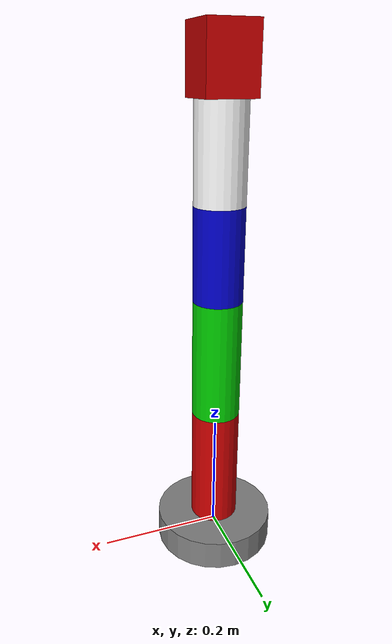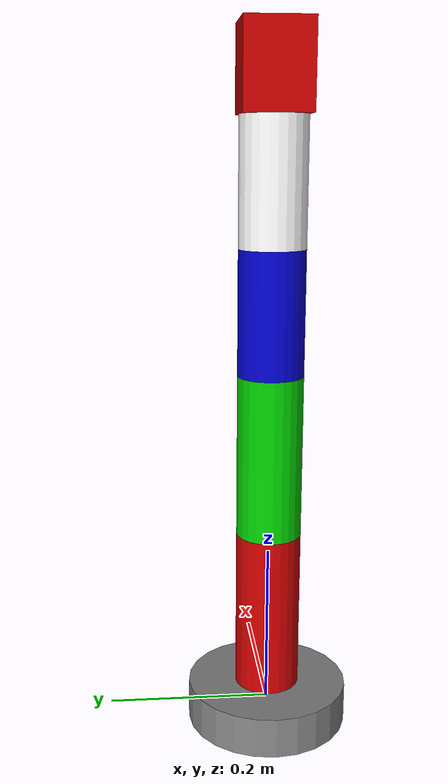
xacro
<?xml version="1.0"?>
<robot name="five_dof_arm" xmlns:xacro="http://www.ros.org/wiki/xacro">

  <!-- Materials and colors -->
  <material name="blue">
    <color rgba="0.0 0.0 0.8 1.0"/>
  </material>
  <material name="red">
    <color rgba="0.8 0.0 0.0 1.0"/>
  </material>
  <material name="green">
    <color rgba="0.0 0.8 0.0 1.0"/>
  </material>
  <material name="grey">
    <color rgba="0.5 0.5 0.5 1.0"/>
  </material>
  <material name="white">
    <color rgba="1.0 1.0 1.0 1.0"/>
  </material>

  <!-- Constants -->
  <xacro:property name="PI" value="3.14159265359" />

  <!-- Link dimensions -->
  <xacro:property name="base_radius" value="0.1" />
  <xacro:property name="base_height" value="0.05" />
  <xacro:property name="link_radius" value="0.04" />
  <xacro:property name="link1_length" value="0.2" />
  <xacro:property name="link2_length" value="0.2" />
  <xacro:property name="link3_length" value="0.15" />
  <xacro:property name="link4_length" value="0.15" />
  <xacro:property name="gripper_length" value="0.1" />

  <!-- Mass properties -->
  <xacro:property name="base_mass" value="1.0" />
  <xacro:property name="link1_mass" value="0.8" />
  <xacro:property name="link2_mass" value="0.8" />
  <xacro:property name="link3_mass" value="0.6" />
  <xacro:property name="link4_mass" value="0.6" />
  <xacro:property name="gripper_mass" value="0.3" />

  <!-- Inertia macro for cylindrical links -->
  <xacro:macro name="cylinder_inertia" params="mass radius length">
    <inertial>
      <mass value="${mass}" />
      <origin xyz="0 0 ${length/2}" rpy="0 0 0" />
      <inertia
        ixx="${mass * (3 * radius * radius + length * length) / 12}"
        ixy="0.0"
        ixz="0.0"
        iyy="${mass * (3 * radius * radius + length * length) / 12}"
        iyz="0.0"
        izz="${mass * radius * radius / 2}" />
    </inertial>
  </xacro:macro>

  <!-- Base link -->
  <link name="base_link">
    <visual>
      <geometry>
        <cylinder radius="${base_radius}" length="${base_height}" />
      </geometry>
      <material name="grey" />
    </visual>
    <collision>
      <geometry>
        <cylinder radius="${base_radius}" length="${base_height}" />
      </geometry>
    </collision>
    <inertial>
      <mass value="${base_mass}" />
      <origin xyz="0 0 0" rpy="0 0 0" />
      <inertia
        ixx="${base_mass * (3 * base_radius * base_radius + base_height * base_height) / 12}"
        ixy="0.0"
        ixz="0.0"
        iyy="${base_mass * (3 * base_radius * base_radius + base_height * base_height) / 12}"
        iyz="0.0"
        izz="${base_mass * base_radius * base_radius / 2}" />
    </inertial>
  </link>

  <!-- Joint 1: Base to Link 1 (Rotation around Z) -->
  <joint name="joint1" type="revolute">
    <parent link="base_link" />
    <child link="link1" />
    <origin xyz="0 0 ${base_height/2}" rpy="0 0 0" />
    <axis xyz="0 0 1" />
    <limit lower="${-PI}" upper="${PI}" effort="100" velocity="1.0" />
  </joint>

  <!-- Link 1 -->
  <link name="link1">
    <visual>
      <geometry>
        <cylinder radius="${link_radius}" length="${link1_length}" />
      </geometry>
      <origin xyz="0 0 ${link1_length/2}" rpy="0 0 0" />
      <material name="red" />
    </visual>
    <collision>
      <geometry>
        <cylinder radius="${link_radius}" length="${link1_length}" />
      </geometry>
      <origin xyz="0 0 ${link1_length/2}" rpy="0 0 0" />
    </collision>
    <xacro:cylinder_inertia mass="${link1_mass}" radius="${link_radius}" length="${link1_length}" />
  </link>

  <!-- Joint 2: Link 1 to Link 2 (Rotation around Y) -->
  <joint name="joint2" type="revolute">
    <parent link="link1" />
    <child link="link2" />
    <origin xyz="0 0 ${link1_length}" rpy="0 0 0" />
    <axis xyz="0 1 0" />
    <limit lower="${-PI/2}" upper="${PI/2}" effort="100" velocity="1.0" />
  </joint>

  <!-- Link 2 -->
  <link name="link2">
    <visual>
      <geometry>
        <cylinder radius="${link_radius}" length="${link2_length}" />
      </geometry>
      <origin xyz="0 0 ${link2_length/2}" rpy="0 0 0" />
      <material name="green" />
    </visual>
    <collision>
      <geometry>
        <cylinder radius="${link_radius}" length="${link2_length}" />
      </geometry>
      <origin xyz="0 0 ${link2_length/2}" rpy="0 0 0" />
    </collision>
    <xacro:cylinder_inertia mass="${link2_mass}" radius="${link_radius}" length="${link2_length}" />
  </link>

  <!-- Joint 3: Link 2 to Link 3 (Rotation around Y) -->
  <joint name="joint3" type="revolute">
    <parent link="link2" />
    <child link="link3" />
    <origin xyz="0 0 ${link2_length}" rpy="0 0 0" />
    <axis xyz="0 1 0" />
    <limit lower="${-PI/2}" upper="${PI/2}" effort="100" velocity="1.0" />
  </joint>

  <!-- Link 3 -->
  <link name="link3">
    <visual>
      <geometry>
        <cylinder radius="${link_radius}" length="${link3_length}" />
      </geometry>
      <origin xyz="0 0 ${link3_length/2}" rpy="0 0 0" />
      <material name="blue" />
    </visual>
    <collision>
      <geometry>
        <cylinder radius="${link_radius}" length="${link3_length}" />
      </geometry>
      <origin xyz="0 0 ${link3_length/2}" rpy="0 0 0" />
    </collision>
    <xacro:cylinder_inertia mass="${link3_mass}" radius="${link_radius}" length="${link3_length}" />
  </link>

  <!-- Joint 4: Link 3 to Link 4 (Rotation around Y) -->
  <joint name="joint4" type="revolute">
    <parent link="link3" />
    <child link="link4" />
    <origin xyz="0 0 ${link3_length}" rpy="0 0 0" />
    <axis xyz="0 1 0" />
    <limit lower="${-PI/2}" upper="${PI/2}" effort="100" velocity="1.0" />
  </joint>

  <!-- Link 4 -->
  <link name="link4">
    <visual>
      <geometry>
        <cylinder radius="${link_radius}" length="${link4_length}" />
      </geometry>
      <origin xyz="0 0 ${link4_length/2}" rpy="0 0 0" />
      <material name="white" />
    </visual>
    <collision>
      <geometry>
        <cylinder radius="${link_radius}" length="${link4_length}" />
      </geometry>
      <origin xyz="0 0 ${link4_length/2}" rpy="0 0 0" />
    </collision>
    <xacro:cylinder_inertia mass="${link4_mass}" radius="${link_radius}" length="${link4_length}" />
  </link>

  <!-- Joint 5: Link 4 to Gripper (Rotation around Z) -->
  <joint name="joint5" type="revolute">
    <parent link="link4" />
    <child link="gripper" />
    <origin xyz="0 0 ${link4_length}" rpy="0 0 0" />
    <axis xyz="0 0 1" />
    <limit lower="${-PI}" upper="${PI}" effort="100" velocity="1.0" />
  </joint>

  <!-- Gripper -->
  <link name="gripper">
    <visual>
      <geometry>
        <box size="${link_radius*2} ${link_radius*2} ${gripper_length}" />
      </geometry>
      <origin xyz="0 0 ${gripper_length/2}" rpy="0 0 0" />
      <material name="red" />
    </visual>
    <collision>
      <geometry>
        <box size="${link_radius*2} ${link_radius*2} ${gripper_length}" />
      </geometry>
      <origin xyz="0 0 ${gripper_length/2}" rpy="0 0 0" />
    </collision>
    <inertial>
      <mass value="${gripper_mass}" />
      <origin xyz="0 0 ${gripper_length/2}" rpy="0 0 0" />
      <inertia
        ixx="${gripper_mass * (link_radius*link_radius*4 + gripper_length*gripper_length) / 12}"
        ixy="0.0"
        ixz="0.0"
        iyy="${gripper_mass * (link_radius*link_radius*4 + gripper_length*gripper_length) / 12}"
        iyz="0.0"
        izz="${gripper_mass * link_radius*link_radius*2 / 6}" />
    </inertial>
  </link>

  <!-- Gazebo specific colors -->
  <gazebo reference="base_link">
    <material>Gazebo/Grey</material>
  </gazebo>
  <gazebo reference="link1">
    <material>Gazebo/Red</material>
  </gazebo>
  <gazebo reference="link2">
    <material>Gazebo/Green</material>
  </gazebo>
  <gazebo reference="link3">
    <material>Gazebo/Blue</material>
  </gazebo>
  <gazebo reference="link4">
    <material>Gazebo/White</material>
  </gazebo>
  <gazebo reference="gripper">
    <material>Gazebo/Red</material>
  </gazebo>

  <!-- Transmission elements for ROS 2 control -->
  <transmission name="trans_joint1">
    <type>transmission_interface/SimpleTransmission</type>
    <joint name="joint1">
      <hardwareInterface>hardware_interface/PositionJointInterface</hardwareInterface>
    </joint>
    <actuator name="motor_joint1">
      <hardwareInterface>hardware_interface/PositionJointInterface</hardwareInterface>
      <mechanicalReduction>1</mechanicalReduction>
    </actuator>
  </transmission>

  <transmission name="trans_joint2">
    <type>transmission_interface/SimpleTransmission</type>
    <joint name="joint2">
      <hardwareInterface>hardware_interface/PositionJointInterface</hardwareInterface>
    </joint>
    <actuator name="motor_joint2">
      <hardwareInterface>hardware_interface/PositionJointInterface</hardwareInterface>
      <mechanicalReduction>1</mechanicalReduction>
    </actuator>
  </transmission>

  <transmission name="trans_joint3">
    <type>transmission_interface/SimpleTransmission</type>
    <joint name="joint3">
      <hardwareInterface>hardware_interface/PositionJointInterface</hardwareInterface>
    </joint>
    <actuator name="motor_joint3">
      <hardwareInterface>hardware_interface/PositionJointInterface</hardwareInterface>
      <mechanicalReduction>1</mechanicalReduction>
    </actuator>
  </transmission>

  <transmission name="trans_joint4">
    <type>transmission_interface/SimpleTransmission</type>
    <joint name="joint4">
      <hardwareInterface>hardware_interface/PositionJointInterface</hardwareInterface>
    </joint>
    <actuator name="motor_joint4">
      <hardwareInterface>hardware_interface/PositionJointInterface</hardwareInterface>
      <mechanicalReduction>1</mechanicalReduction>
    </actuator>
  </transmission>

  <transmission name="trans_joint5">
    <type>transmission_interface/SimpleTransmission</type>
    <joint name="joint5">
      <hardwareInterface>hardware_interface/PositionJointInterface</hardwareInterface>
    </joint>
    <actuator name="motor_joint5">
      <hardwareInterface>hardware_interface/PositionJointInterface</hardwareInterface>
      <mechanicalReduction>1</mechanicalReduction>
    </actuator>
  </transmission>

</robot>
